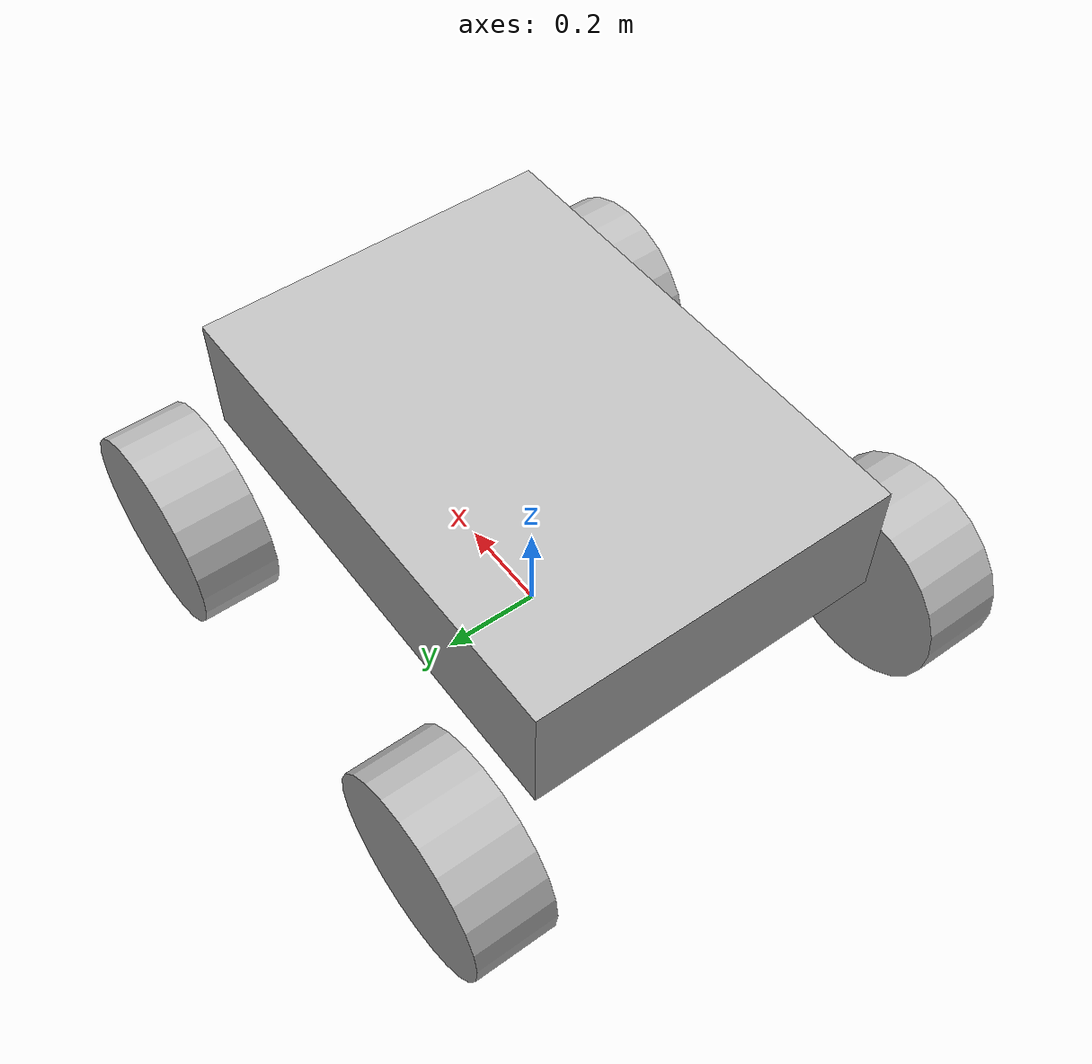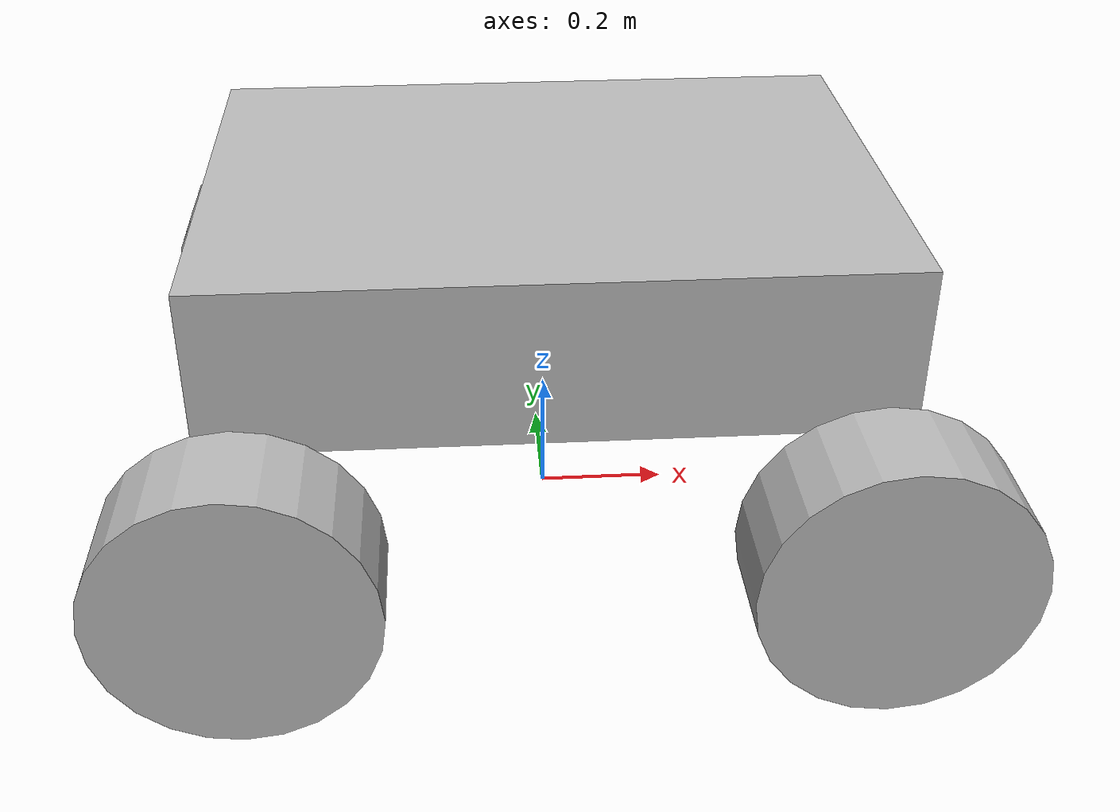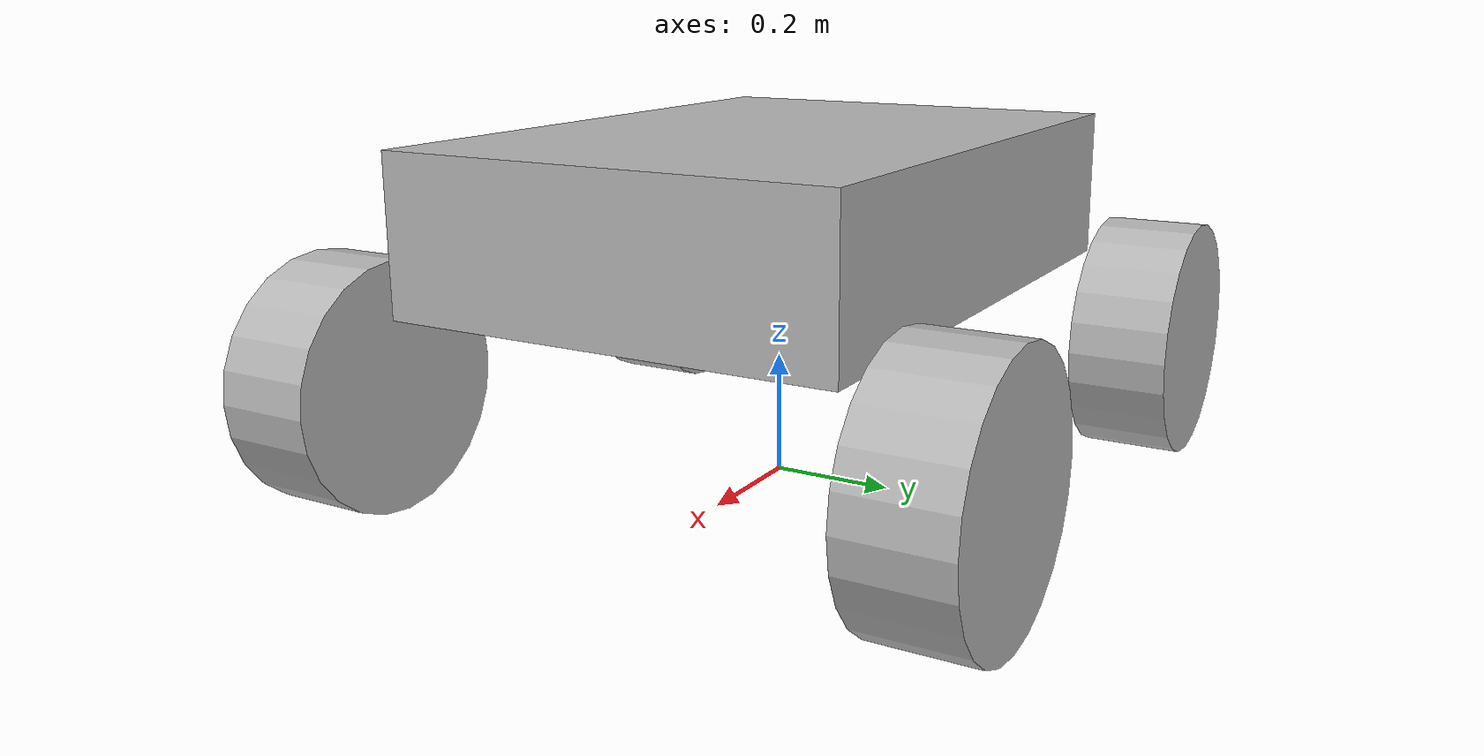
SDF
<?xml version="1.0"?>
<sdf version="1.9">
  <model name="kolestel_robot">
    <pose>0 0 0 0 0 0</pose>

    <!-- =====================
         Parameters (meters)
         ===================== -->
    <!-- From your FeatureScript defaults: wheelbase=0.889m, track=1.0m, wheel_diam=0.4m -->
    <link name="base_link">
      <!-- Keep CoM slightly above ground; tune later -->
      <pose>0 0 0.45 0 0 0</pose>

      <!-- Visual: start with simple box; swap to mesh later -->
      <visual name="base_visual">
        <geometry>
          <box><size>1.014 0.730 0.25</size></box>
        </geometry>
      </visual>

      <!-- Collision: simple box to keep physics stable -->
      <collision name="base_collision">
        <geometry>
          <box><size>1.014 0.730 0.25</size></box>
        </geometry>
        <surface>
          <friction>
            <ode>
              <mu>1.0</mu>
              <mu2>1.0</mu2>
            </ode>
          </friction>
        </surface>
      </collision>

      <!-- Mass/inertia: rough. Replace with better values later -->
      <inertial>
        <mass>25.0</mass>
        <inertia>
          <ixx>1.2</ixx>
          <iyy>2.0</iyy>
          <izz>2.4</izz>
          <ixy>0</ixy><ixz>0</ixz><iyz>0</iyz>
        </inertia>
      </inertial>
    </link>

    <!-- Front-left wheel -->
    <link name="front_left_wheel">
      <pose>0.4445 0.5 0.2 0 0 0</pose>
      <visual name="v">
        <pose>0 0 0 1.57079632679 0 0</pose>
        <geometry>
          <cylinder><radius>0.2</radius><length>0.16</length></cylinder>
        </geometry>
      </visual>
      <collision name="c">
        <pose>0 0 0 1.57079632679 0 0</pose>
        <geometry>
          <cylinder><radius>0.2</radius><length>0.16</length></cylinder>
        </geometry>
        <surface>
          <friction>
            <ode>
              <mu>1.5</mu>
              <mu2>1.5</mu2>
            </ode>
          </friction>
        </surface>
      </collision>
      <inertial>
        <mass>2.0</mass>
        <inertia>
          <ixx>0.02</ixx>
          <iyy>0.04</iyy>
          <izz>0.02</izz>
          <ixy>0</ixy><ixz>0</ixz><iyz>0</iyz>
        </inertia>
      </inertial>
    </link>
    <joint name="front_left_wheel_joint" type="revolute">

      <pose>0.4445 0.5 0.2 0 0 0</pose>
<parent>base_link</parent>
      <child>front_left_wheel</child>
      <axis>
        <xyz>0 1 0</xyz>
        <limit><lower>-1e16</lower><upper>1e16</upper></limit>
        <dynamics><damping>0.1</damping><friction>0.0</friction></dynamics>
      </axis>
    </joint>

    <!-- Front-right wheel -->
    <link name="front_right_wheel">
      <pose>0.4445 -0.5 0.2 0 0 0</pose>
      <visual name="v">
        <pose>0 0 0 1.57079632679 0 0</pose>
        <geometry>
          <cylinder><radius>0.2</radius><length>0.16</length></cylinder>
        </geometry>
      </visual>
      <collision name="c">
        <pose>0 0 0 1.57079632679 0 0</pose>
        <geometry>
          <cylinder><radius>0.2</radius><length>0.16</length></cylinder>
        </geometry>
        <surface>
          <friction>
            <ode>
              <mu>1.5</mu>
              <mu2>1.5</mu2>
            </ode>
          </friction>
        </surface>
      </collision>
      <inertial>
        <mass>2.0</mass>
        <inertia>
          <ixx>0.02</ixx>
          <iyy>0.04</iyy>
          <izz>0.02</izz>
          <ixy>0</ixy><ixz>0</ixz><iyz>0</iyz>
        </inertia>
      </inertial>
    </link>
    <joint name="front_right_wheel_joint" type="revolute">

      <pose>0.4445 -0.5 0.2 0 0 0</pose>
<parent>base_link</parent>
      <child>front_right_wheel</child>
      <axis>
        <xyz>0 1 0</xyz>
        <limit><lower>-1e16</lower><upper>1e16</upper></limit>
        <dynamics><damping>0.1</damping><friction>0.0</friction></dynamics>
      </axis>
    </joint>

    <!-- Rear-left wheel -->
    <link name="rear_left_wheel">
      <pose>-0.4445 0.5 0.2 0 0 0</pose>
      <visual name="v">
        <pose>0 0 0 1.57079632679 0 0</pose>
        <geometry>
          <cylinder><radius>0.2</radius><length>0.16</length></cylinder>
        </geometry>
      </visual>
      <collision name="c">
        <pose>0 0 0 1.57079632679 0 0</pose>
        <geometry>
          <cylinder><radius>0.2</radius><length>0.16</length></cylinder>
        </geometry>
        <surface>
          <friction>
            <ode>
              <mu>1.5</mu>
              <mu2>1.5</mu2>
            </ode>
          </friction>
        </surface>
      </collision>
      <inertial>
        <mass>2.0</mass>
        <inertia>
          <ixx>0.02</ixx>
          <iyy>0.04</iyy>
          <izz>0.02</izz>
          <ixy>0</ixy><ixz>0</ixz><iyz>0</iyz>
        </inertia>
      </inertial>
    </link>
    <joint name="rear_left_wheel_joint" type="revolute">

      <pose>-0.4445 0.5 0.2 0 0 0</pose>
<parent>base_link</parent>
      <child>rear_left_wheel</child>
      <axis>
        <xyz>0 1 0</xyz>
        <limit><lower>-1e16</lower><upper>1e16</upper></limit>
        <dynamics><damping>0.1</damping><friction>0.0</friction></dynamics>
      </axis>
    </joint>

    <!-- Rear-right wheel -->
    <link name="rear_right_wheel">
      <pose>-0.4445 -0.5 0.2 0 0 0</pose>
      <visual name="v">
        <pose>0 0 0 1.57079632679 0 0</pose>
        <geometry>
          <cylinder><radius>0.2</radius><length>0.16</length></cylinder>
        </geometry>
      </visual>
      <collision name="c">
        <pose>0 0 0 1.57079632679 0 0</pose>
        <geometry>
          <cylinder><radius>0.2</radius><length>0.16</length></cylinder>
        </geometry>
        <surface>
          <friction>
            <ode>
              <mu>1.5</mu>
              <mu2>1.5</mu2>
            </ode>
          </friction>
        </surface>
      </collision>
      <inertial>
        <mass>2.0</mass>
        <inertia>
          <ixx>0.02</ixx>
          <iyy>0.04</iyy>
          <izz>0.02</izz>
          <ixy>0</ixy><ixz>0</ixz><iyz>0</iyz>
        </inertia>
      </inertial>
    </link>
    <joint name="rear_right_wheel_joint" type="revolute">

      <pose>-0.4445 -0.5 0.2 0 0 0</pose>
<parent>base_link</parent>
      <child>rear_right_wheel</child>
      <axis>
        <xyz>0 1 0</xyz>
        <limit><lower>-1e16</lower><upper>1e16</upper></limit>
        <dynamics><damping>0.1</damping><friction>0.0</friction></dynamics>
      </axis>
    </joint>

    <!-- =====================
         Drive system (Gazebo Sim)
         Drives ONLY the front wheels; rears are passive but will spin due to contact.
         ===================== -->
    <plugin filename="gz-sim-diff-drive-system" name="gz::sim::systems::DiffDrive">
        <!-- Gazebo Sim DiffDrive supports multiple joints per side -->
        <left_joint>front_left_wheel_joint</left_joint>
        <left_joint>rear_left_wheel_joint</left_joint>
        <right_joint>front_right_wheel_joint</right_joint>
        <right_joint>rear_right_wheel_joint</right_joint>
        <wheel_separation>1.0</wheel_separation>
        <wheel_radius>0.2</wheel_radius>
        <topic>cmd_vel</topic>
        <odometry_topic>odom</odometry_topic>
        <odom_frame>odom</odom_frame>
        <robot_base_frame>base_link</robot_base_frame>
        <max_linear_acceleration>2.0</max_linear_acceleration>
        <max_angular_acceleration>2.5</max_angular_acceleration>
      </plugin>

    <!-- Publish joint states (useful for RViz/Debug) -->
    <plugin filename="gz-sim-joint-state-publisher-system" name="gz::sim::systems::JointStatePublisher" />

  </model>
</sdf>
